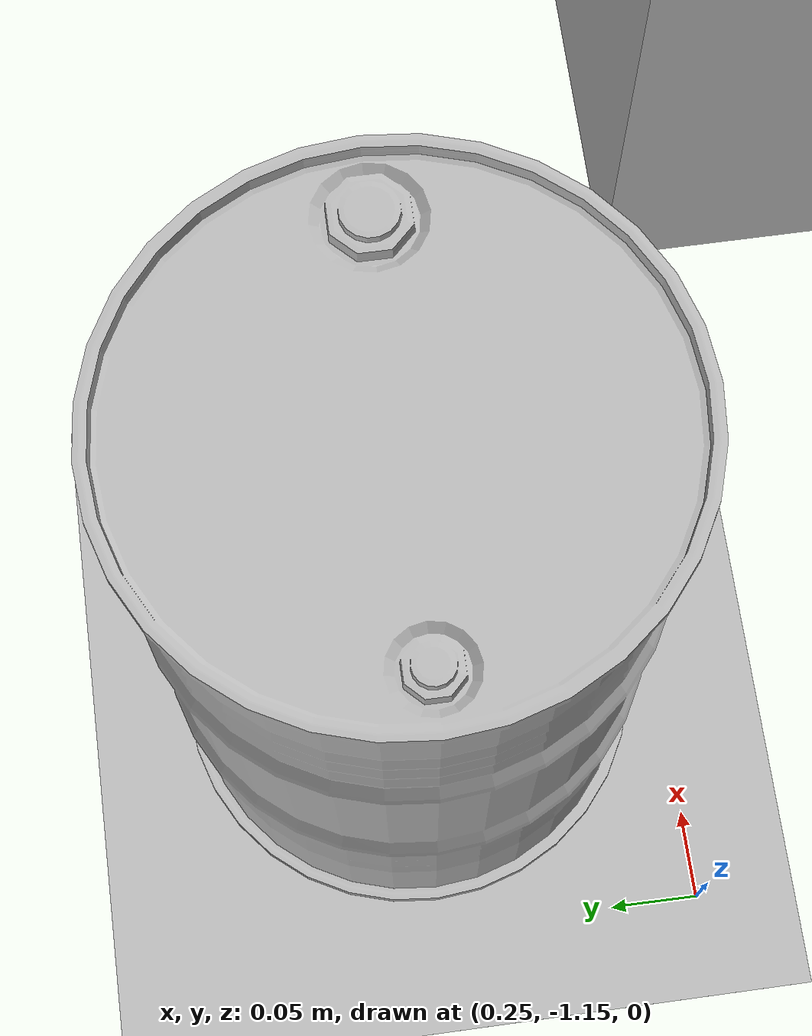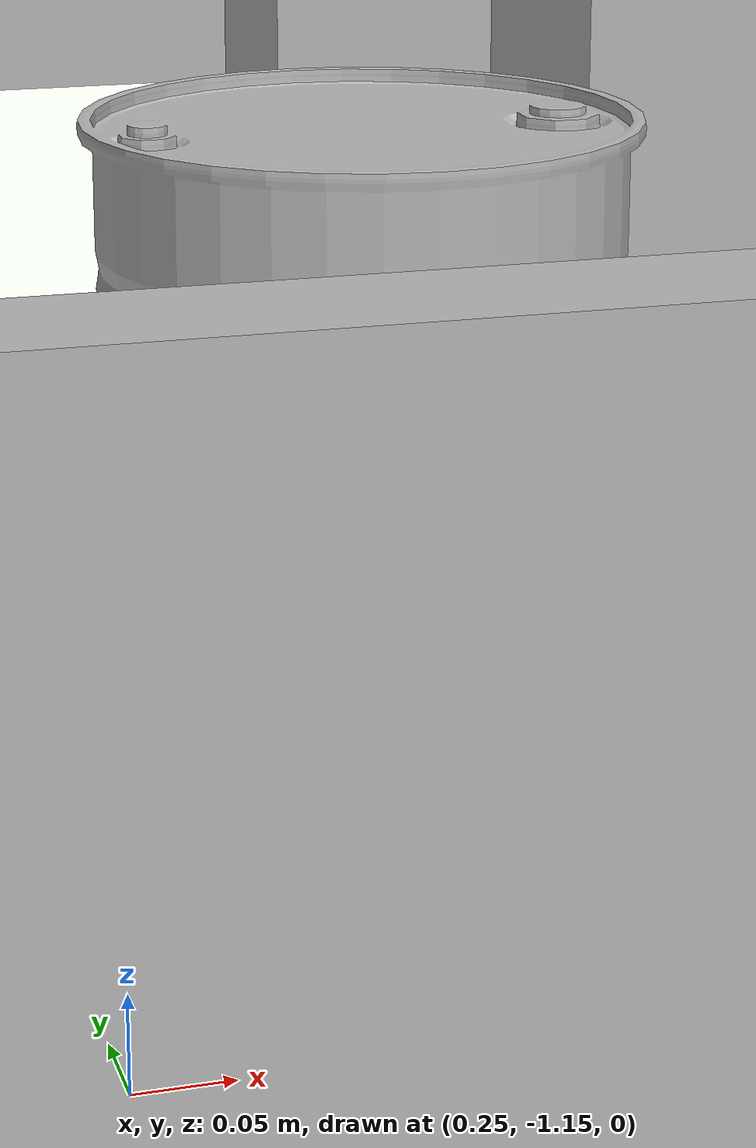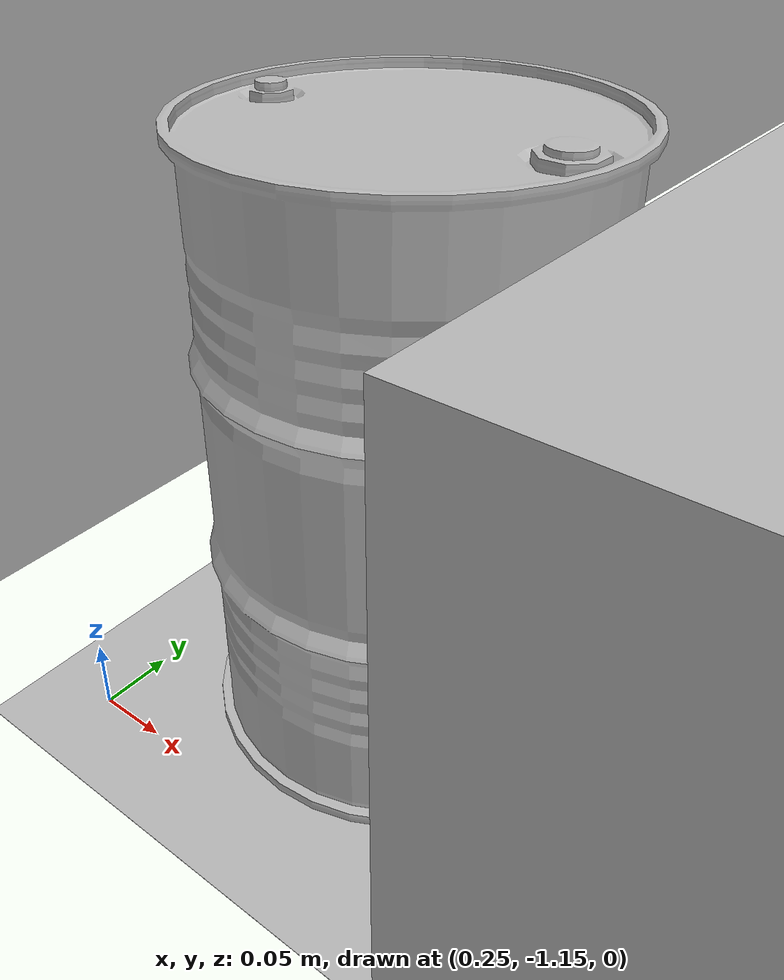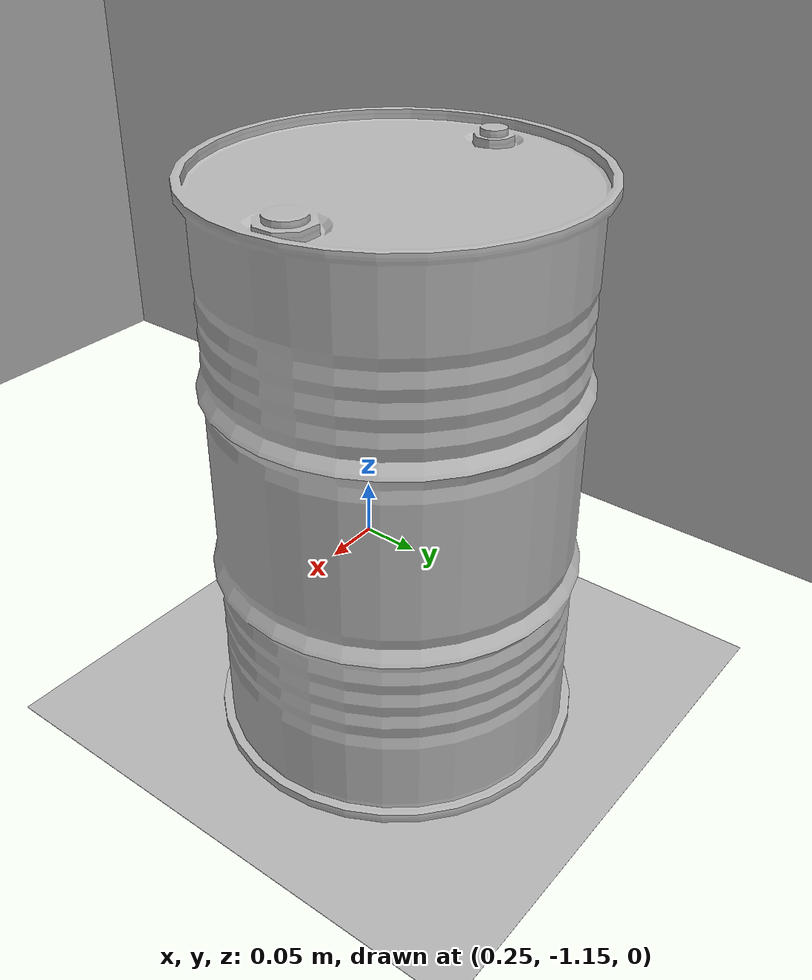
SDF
<?xml version="1.0" ?>

<sdf version="1.6">
  <world name="default">

     <scene>
      <ambient>0.8 0.8 0.8 1.0</ambient>
      <background>0 0 0</background>
      <grid>false</grid>
    </scene>

  <gui>
      <camera name="gui_camera">
        <pose>1.94823 -5.9477 2.87535 0 0.6 1.57</pose>
      </camera>
    </gui>

    <include>
      <uri>model://sun</uri>
    </include>

    <include>
      <uri>model://floor</uri>
      <pose>0 0 0 0 0 0</pose>
    </include>

    <include>
      <uri>model://walls</uri>
      <pose>0 0 0 0 0 0</pose>
    </include>

    <include>
      <uri>model://bluebarrel</uri>
      <pose>0.4 -1.0 0 0 0 0</pose>
    </include>

  </world>
</sdf>

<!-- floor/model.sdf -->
<sdf version='1.6'>
  <model name='floor'>
    <link name='link_1'>
         <visual name='visual'>
        <pose frame=''>0 0 0 0 -0 0</pose>
        <geometry>
          <mesh>
            <uri>model://floor/meshes/floor_4.dae</uri>
            <scale>0.1 0.1 0.1</scale>
          </mesh>
        </geometry>
        <cast_shadows>0</cast_shadows>
        <transparency>0</transparency>
      </visual>
        <collision name='collision'>
          <geometry>
            <plane>
              <normal>0 0 1</normal>
              <size>100 100</size>
            </plane>
          </geometry>
          <surface>
            <friction>
              <ode>
                <mu>100</mu>
                <mu2>50</mu2>
              </ode>
              <torsional>
                <ode/>
              </torsional>
            </friction>
            <contact>
              <ode/>
            </contact>
            <bounce/>
          </surface>
          <max_contacts>10</max_contacts>
        </collision>
    </link>

    <static>1</static>
    <allow_auto_disable>1</allow_auto_disable>
  </model>
</sdf>

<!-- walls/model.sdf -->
<sdf version='1.6'>
  <model name='walls'>
    <link name='link_1'>
         <visual name='visual'>
        <pose frame=''>0 0 0 0 -0 0</pose>
        <geometry>
          <mesh>
            <uri>model://walls/meshes/walls.dae</uri>
            <scale>0.025 0.025 0.025</scale>
          </mesh>
        </geometry>
        <cast_shadows>0</cast_shadows>
        <transparency>0</transparency>
      </visual>
      <collision name='collision'>
        <laser_retro>0</laser_retro>
        <max_contacts>10</max_contacts>
        <pose frame=''>0 0 0 0 -0 0</pose>
        <geometry>
          <mesh>
            <uri>model://walls/meshes/walls.stl</uri>
            <scale>0.025 0.025 0.025</scale>
          </mesh>
        </geometry>
     </collision>
    </link>

    <static>1</static>
    <allow_auto_disable>1</allow_auto_disable>
  </model>
</sdf>

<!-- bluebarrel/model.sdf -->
<sdf version='1.6'>
  <model name='bluebarrel'>
    <link name='link_1'>
         <visual name='visual'>
        <pose frame=''>0 0 0 0 -0 0</pose>
        <geometry>
          <mesh>
            <uri>model://bluebarrel/meshes/bluebarrel.dae</uri>
            <scale>0.4 0.4 0.4</scale>
          </mesh>
        </geometry>
        <cast_shadows>0</cast_shadows>
        <transparency>0</transparency>
      </visual>
      <collision name='collision'>
        <laser_retro>0</laser_retro>
        <max_contacts>10</max_contacts>
        <pose frame=''>0 0 0 0 -0 0</pose>
        <geometry>
          <mesh>
            <uri>model://bluebarrel/meshes/bluebarrel.stl</uri>
            <scale>0.4 0.4 0.4</scale>
          </mesh>
        </geometry>
     </collision>
    </link>

    <static>1</static>
    <allow_auto_disable>1</allow_auto_disable>
  </model>
</sdf>
